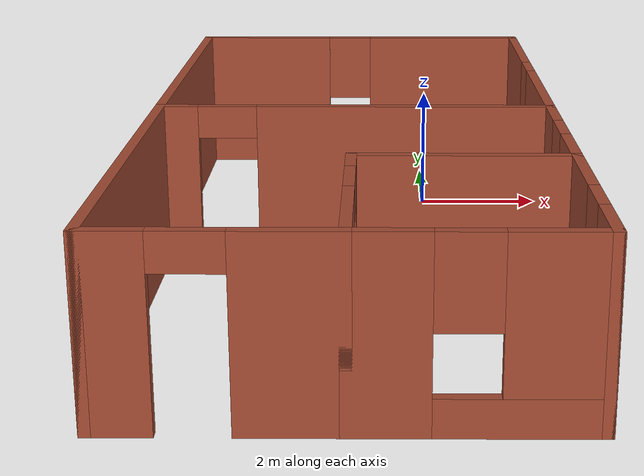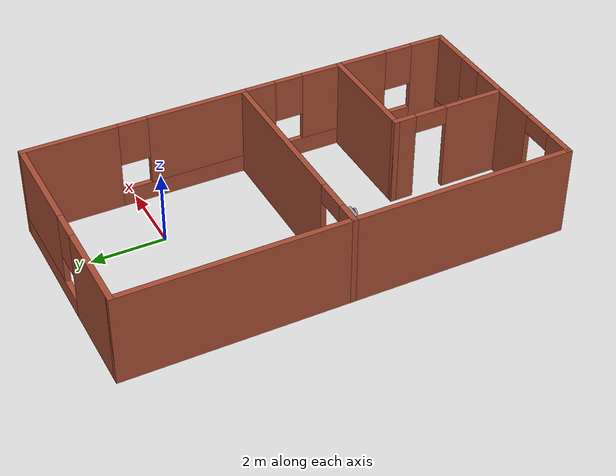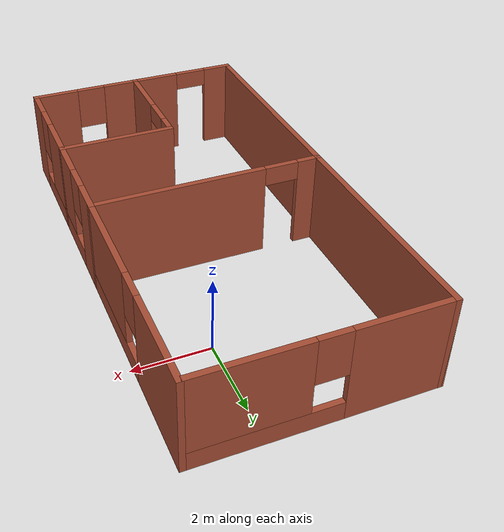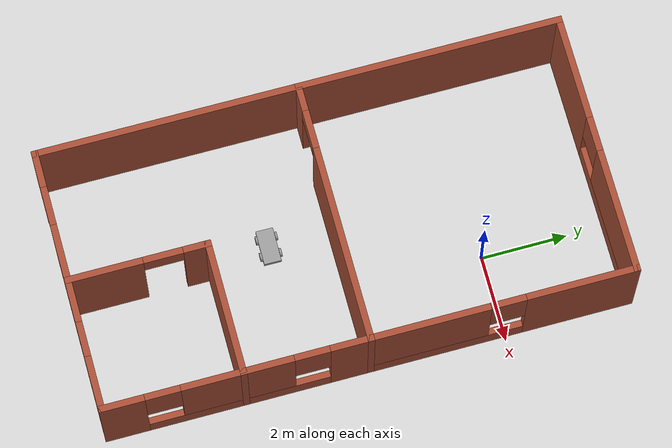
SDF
<sdf version="1.7">
 <world name="default">
  <model name="model">
   <pose>-1.16619 -3.11028 0 0 -0 0</pose>
   <link name="Wall_0">
    <pose>0 6 0 0 -0 0</pose>
    <visual name="Wall_0_Visual_0">
     <pose>-1.84053 0 1.25 0 -0 0</pose>
     <geometry><box><size>2.46894 0.15 2.5</size></box></geometry>
     <material>
      <script><uri>file://media/materials/scripts/gazebo.material</uri><name>Gazebo/Bricks</name></script>
      <ambient>1 1 1 1</ambient>
     </material>
     <meta><layer>0</layer></meta>
    </visual>
    <collision name="Wall_0_Collision_0">
     <geometry><box><size>2.46894 0.15 2.5</size></box></geometry>
     <pose>-1.84053 0 1.25 0 -0 0</pose>
    </collision>
    <visual name="Wall_0_Visual_1">
     <pose>1.23447 0 0.25 0 -0 0</pose>
     <geometry><box><size>3.68106 0.15 0.5</size></box></geometry>
     <material>
      <script><uri>file://media/materials/scripts/gazebo.material</uri><name>Gazebo/Bricks</name></script>
      <ambient>1 1 1 1</ambient>
     </material>
     <meta><layer>0</layer></meta>
    </visual>
    <collision name="Wall_0_Collision_1">
     <geometry><box><size>3.68106 0.15 0.5</size></box></geometry>
     <pose>1.23447 0 0.25 0 -0 0</pose>
    </collision>
    <visual name="Wall_0_Visual_2">
     <pose>1.63447 0 1.5 0 -0 0</pose>
     <geometry><box><size>2.88106 0.15 2</size></box></geometry>
     <material>
      <script><uri>file://media/materials/scripts/gazebo.material</uri><name>Gazebo/Bricks</name></script>
      <ambient>1 1 1 1</ambient>
     </material>
     <meta><layer>0</layer></meta>
    </visual>
    <collision name="Wall_0_Collision_2">
     <geometry><box><size>2.88106 0.15 2</size></box></geometry>
     <pose>1.63447 0 1.5 0 -0 0</pose>
    </collision>
    <visual name="Wall_0_Visual_3">
     <pose>-0.206057 0 1.9 0 -0 0</pose>
     <geometry><box><size>0.8 0.15 1.2</size></box></geometry>
     <material>
      <script><uri>file://media/materials/scripts/gazebo.material</uri><name>Gazebo/Bricks</name></script>
      <ambient>1 1 1 1</ambient>
     </material>
     <meta><layer>0</layer></meta>
    </visual>
    <collision name="Wall_0_Collision_3">
     <geometry><box><size>0.8 0.15 1.2</size></box></geometry>
     <pose>-0.206057 0 1.9 0 -0 0</pose>
    </collision>
   </link>
   <link name="Wall_1">
    <pose>3 3 0 0 -0 -1.5708</pose>
    <visual name="Wall_1_Visual_0">
     <pose>-1.78908 0 1.25 0 -0 0</pose>
     <geometry><box><size>2.57185 0.15 2.5</size></box></geometry>
     <material>
      <script><uri>file://media/materials/scripts/gazebo.material</uri><name>Gazebo/Bricks</name></script>
      <ambient>1 1 1 1</ambient>
     </material>
     <meta><layer>0</layer></meta>
    </visual>
    <collision name="Wall_1_Collision_0">
     <geometry><box><size>2.57185 0.15 2.5</size></box></geometry>
     <pose>-1.78908 0 1.25 0 -0 0</pose>
    </collision>
    <visual name="Wall_1_Visual_1">
     <pose>1.28592 0 0.25 0 -0 0</pose>
     <geometry><box><size>3.57815 0.15 0.5</size></box></geometry>
     <material>
      <script><uri>file://media/materials/scripts/gazebo.material</uri><name>Gazebo/Bricks</name></script>
      <ambient>1 1 1 1</ambient>
     </material>
     <meta><layer>0</layer></meta>
    </visual>
    <collision name="Wall_1_Collision_1">
     <geometry><box><size>3.57815 0.15 0.5</size></box></geometry>
     <pose>1.28592 0 0.25 0 -0 0</pose>
    </collision>
    <visual name="Wall_1_Visual_2">
     <pose>1.68592 0 1.5 0 -0 0</pose>
     <geometry><box><size>2.77815 0.15 2</size></box></geometry>
     <material>
      <script><uri>file://media/materials/scripts/gazebo.material</uri><name>Gazebo/Bricks</name></script>
      <ambient>1 1 1 1</ambient>
     </material>
     <meta><layer>0</layer></meta>
    </visual>
    <collision name="Wall_1_Collision_2">
     <geometry><box><size>2.77815 0.15 2</size></box></geometry>
     <pose>1.68592 0 1.5 0 -0 0</pose>
    </collision>
    <visual name="Wall_1_Visual_3">
     <pose>-0.103152 0 1.9 0 -0 0</pose>
     <geometry><box><size>0.8 0.15 1.2</size></box></geometry>
     <material>
      <script><uri>file://media/materials/scripts/gazebo.material</uri><name>Gazebo/Bricks</name></script>
      <ambient>1 1 1 1</ambient>
     </material>
     <meta><layer>0</layer></meta>
    </visual>
    <collision name="Wall_1_Collision_3">
     <geometry><box><size>0.8 0.15 1.2</size></box></geometry>
     <pose>-0.103152 0 1.9 0 -0 0</pose>
    </collision>
   </link>
   <link name="Wall_11">
    <collision name="Wall_11_Collision">
     <geometry><box><size>6.15 0.15 2.5</size></box></geometry>
     <pose>0 0 1.25 0 -0 0</pose>
    </collision>
    <visual name="Wall_11_Visual">
     <pose>0 0 1.25 0 -0 0</pose>
     <geometry><box><size>6.15 0.15 2.5</size></box></geometry>
     <material>
      <script><uri>file://media/materials/scripts/gazebo.material</uri><name>Gazebo/Bricks</name></script>
      <ambient>1 1 1 1</ambient>
     </material>
     <meta><layer>0</layer></meta>
    </visual>
    <pose>-3 -3 0 0 -0 -1.5708</pose>
   </link>
   <link name="Wall_12">
    <pose>-1.5 -6 0 0 -0 0</pose>
    <visual name="Wall_12_Visual_0">
     <pose>-1.1411 0 1.25 0 -0 0</pose>
     <geometry><box><size>0.867804 0.15 2.5</size></box></geometry>
     <material>
      <script><uri>file://media/materials/scripts/gazebo.material</uri><name>Gazebo/Bricks</name></script>
      <ambient>0.921569 0.807843 0.615686 1</ambient>
     </material>
     <meta><layer>0</layer></meta>
    </visual>
    <collision name="Wall_12_Collision_0">
     <geometry><box><size>0.867804 0.15 2.5</size></box></geometry>
     <pose>-1.1411 0 1.25 0 -0 0</pose>
    </collision>
    <visual name="Wall_12_Visual_1">
     <pose>0.883902 0 1.25 0 -0 0</pose>
     <geometry><box><size>1.3822 0.15 2.5</size></box></geometry>
     <material>
      <script><uri>file://media/materials/scripts/gazebo.material</uri><name>Gazebo/Bricks</name></script>
      <ambient>0.921569 0.807843 0.615686 1</ambient>
     </material>
     <meta><layer>0</layer></meta>
    </visual>
    <collision name="Wall_12_Collision_1">
     <geometry><box><size>1.3822 0.15 2.5</size></box></geometry>
     <pose>0.883902 0 1.25 0 -0 0</pose>
    </collision>
    <visual name="Wall_12_Visual_2">
     <pose>-0.257196 0 2.25 0 -0 0</pose>
     <geometry><box><size>0.9 0.15 0.5</size></box></geometry>
     <material>
      <script><uri>file://media/materials/scripts/gazebo.material</uri><name>Gazebo/Bricks</name></script>
      <ambient>0.921569 0.807843 0.615686 1</ambient>
     </material>
     <meta><layer>0</layer></meta>
    </visual>
    <collision name="Wall_12_Collision_2">
     <geometry><box><size>0.9 0.15 0.5</size></box></geometry>
     <pose>-0.257196 0 2.25 0 -0 0</pose>
    </collision>
   </link>
   <link name="Wall_2">
    <pose>0 0 0 0 -0 3.14159</pose>
    <visual name="Wall_2_Visual_0">
     <pose>-0.782142 0 1.25 0 -0 0</pose>
     <geometry><box><size>4.58624 0.15 2.5</size></box></geometry>
     <material>
      <script><uri>file://media/materials/scripts/gazebo.material</uri><name>Gazebo/Bricks</name></script>
      <ambient>0.921569 0.807843 0.615686 1</ambient>
     </material>
     <meta><layer>0</layer></meta>
    </visual>
    <collision name="Wall_2_Collision_0">
     <geometry><box><size>4.58624 0.15 2.5</size></box></geometry>
     <pose>-0.782142 0 1.25 0 -0 0</pose>
    </collision>
    <visual name="Wall_2_Visual_1">
     <pose>2.74312 0 1.25 0 -0 0</pose>
     <geometry><box><size>0.664284 0.15 2.5</size></box></geometry>
     <material>
      <script><uri>file://media/materials/scripts/gazebo.material</uri><name>Gazebo/Bricks</name></script>
      <ambient>0.921569 0.807843 0.615686 1</ambient>
     </material>
     <meta><layer>0</layer></meta>
    </visual>
    <collision name="Wall_2_Collision_1">
     <geometry><box><size>0.664284 0.15 2.5</size></box></geometry>
     <pose>2.74312 0 1.25 0 -0 0</pose>
    </collision>
    <visual name="Wall_2_Visual_2">
     <pose>1.96098 0 2.25 0 -0 0</pose>
     <geometry><box><size>0.9 0.15 0.5</size></box></geometry>
     <material>
      <script><uri>file://media/materials/scripts/gazebo.material</uri><name>Gazebo/Bricks</name></script>
      <ambient>0.921569 0.807843 0.615686 1</ambient>
     </material>
     <meta><layer>0</layer></meta>
    </visual>
    <collision name="Wall_2_Collision_2">
     <geometry><box><size>0.9 0.15 0.5</size></box></geometry>
     <pose>1.96098 0 2.25 0 -0 0</pose>
    </collision>
   </link>
   <link name="Wall_3">
    <collision name="Wall_3_Collision">
     <geometry><box><size>6.15 0.15 2.5</size></box></geometry>
     <pose>0 0 1.25 0 -0 0</pose>
    </collision>
    <visual name="Wall_3_Visual">
     <pose>0 0 1.25 0 -0 0</pose>
     <geometry><box><size>6.15 0.15 2.5</size></box></geometry>
     <material>
      <script><uri>file://media/materials/scripts/gazebo.material</uri><name>Gazebo/Bricks</name></script>
      <ambient>1 1 1 1</ambient>
     </material>
     <meta><layer>0</layer></meta>
    </visual>
    <pose>-3 3 0 0 -0 1.5708</pose>
   </link>
   <link name="Wall_5">
    <pose>3 -1.425 0 0 -0 -1.5708</pose>
    <visual name="Wall_5_Visual_0">
     <pose>-1.00707 0 1.25 0 -0 0</pose>
     <geometry><box><size>0.985864 0.15 2.5</size></box></geometry>
     <material>
      <script><uri>file://media/materials/scripts/gazebo.material</uri><name>Gazebo/Bricks</name></script>
      <ambient>1 1 1 1</ambient>
     </material>
     <meta><layer>0</layer></meta>
    </visual>
    <collision name="Wall_5_Collision_0">
     <geometry><box><size>0.985864 0.15 2.5</size></box></geometry>
     <pose>-1.00707 0 1.25 0 -0 0</pose>
    </collision>
    <visual name="Wall_5_Visual_1">
     <pose>0.492932 0 0.25 0 -0 0</pose>
     <geometry><box><size>2.01414 0.15 0.5</size></box></geometry>
     <material>
      <script><uri>file://media/materials/scripts/gazebo.material</uri><name>Gazebo/Bricks</name></script>
      <ambient>1 1 1 1</ambient>
     </material>
     <meta><layer>0</layer></meta>
    </visual>
    <collision name="Wall_5_Collision_1">
     <geometry><box><size>2.01414 0.15 0.5</size></box></geometry>
     <pose>0.492932 0 0.25 0 -0 0</pose>
    </collision>
    <visual name="Wall_5_Visual_2">
     <pose>0.892932 0 1.5 0 -0 0</pose>
     <geometry><box><size>1.21414 0.15 2</size></box></geometry>
     <material>
      <script><uri>file://media/materials/scripts/gazebo.material</uri><name>Gazebo/Bricks</name></script>
      <ambient>1 1 1 1</ambient>
     </material>
     <meta><layer>0</layer></meta>
    </visual>
    <collision name="Wall_5_Collision_2">
     <geometry><box><size>1.21414 0.15 2</size></box></geometry>
     <pose>0.892932 0 1.5 0 -0 0</pose>
    </collision>
    <visual name="Wall_5_Visual_3">
     <pose>-0.114136 0 1.9 0 -0 0</pose>
     <geometry><box><size>0.8 0.15 1.2</size></box></geometry>
     <material>
      <script><uri>file://media/materials/scripts/gazebo.material</uri><name>Gazebo/Bricks</name></script>
      <ambient>1 1 1 1</ambient>
     </material>
     <meta><layer>0</layer></meta>
    </visual>
    <collision name="Wall_5_Collision_3">
     <geometry><box><size>0.8 0.15 1.2</size></box></geometry>
     <pose>-0.114136 0 1.9 0 -0 0</pose>
    </collision>
   </link>
   <link name="Wall_6">
    <collision name="Wall_6_Collision">
     <geometry><box><size>3.15 0.15 2.5</size></box></geometry>
     <pose>0 0 1.25 0 -0 0</pose>
    </collision>
    <visual name="Wall_6_Visual">
     <pose>0 0 1.25 0 -0 0</pose>
     <geometry><box><size>3.15 0.15 2.5</size></box></geometry>
     <material>
      <script><uri>file://media/materials/scripts/gazebo.material</uri><name>Gazebo/Bricks</name></script>
      <ambient>0.921569 0.807843 0.615686 1</ambient>
     </material>
     <meta><layer>0</layer></meta>
    </visual>
    <pose>1.5 -2.85 0 0 -0 3.14159</pose>
   </link>
   <link name="Wall_7">
    <pose>0 -4.425 0 0 -0 -1.5708</pose>
    <visual name="Wall_7_Visual_0">
     <pose>-1.32986 0 1.25 0 -0 0</pose>
     <geometry><box><size>0.640288 0.15 2.5</size></box></geometry>
     <material>
      <script><uri>file://media/materials/scripts/gazebo.material</uri><name>Gazebo/Bricks</name></script>
      <ambient>0.921569 0.807843 0.615686 1</ambient>
     </material>
     <meta><layer>0</layer></meta>
    </visual>
    <collision name="Wall_7_Collision_0">
     <geometry><box><size>0.640288 0.15 2.5</size></box></geometry>
     <pose>-1.32986 0 1.25 0 -0 0</pose>
    </collision>
    <visual name="Wall_7_Visual_1">
     <pose>0.770144 0 1.25 0 -0 0</pose>
     <geometry><box><size>1.75971 0.15 2.5</size></box></geometry>
     <material>
      <script><uri>file://media/materials/scripts/gazebo.material</uri><name>Gazebo/Bricks</name></script>
      <ambient>0.921569 0.807843 0.615686 1</ambient>
     </material>
     <meta><layer>0</layer></meta>
    </visual>
    <collision name="Wall_7_Collision_1">
     <geometry><box><size>1.75971 0.15 2.5</size></box></geometry>
     <pose>0.770144 0 1.25 0 -0 0</pose>
    </collision>
    <visual name="Wall_7_Visual_2">
     <pose>-0.559712 0 2.25 0 -0 0</pose>
     <geometry><box><size>0.9 0.15 0.5</size></box></geometry>
     <material>
      <script><uri>file://media/materials/scripts/gazebo.material</uri><name>Gazebo/Bricks</name></script>
      <ambient>0.921569 0.807843 0.615686 1</ambient>
     </material>
     <meta><layer>0</layer></meta>
    </visual>
    <collision name="Wall_7_Collision_2">
     <geometry><box><size>0.9 0.15 0.5</size></box></geometry>
     <pose>-0.559712 0 2.25 0 -0 0</pose>
    </collision>
   </link>
   <link name="Wall_8">
    <pose>1.5 -6 0 0 -0 0</pose>
    <visual name="Wall_8_Visual_0">
     <pose>-1.04724 0 1.25 0 -0 0</pose>
     <geometry><box><size>1.05552 0.15 2.5</size></box></geometry>
     <material>
      <script><uri>file://media/materials/scripts/gazebo.material</uri><name>Gazebo/Bricks</name></script>
      <ambient>0.921569 0.807843 0.615686 1</ambient>
     </material>
     <meta><layer>0</layer></meta>
    </visual>
    <collision name="Wall_8_Collision_0">
     <geometry><box><size>1.05552 0.15 2.5</size></box></geometry>
     <pose>-1.04724 0 1.25 0 -0 0</pose>
    </collision>
    <visual name="Wall_8_Visual_1">
     <pose>0.527761 0 0.25 0 -0 0</pose>
     <geometry><box><size>2.09448 0.15 0.5</size></box></geometry>
     <material>
      <script><uri>file://media/materials/scripts/gazebo.material</uri><name>Gazebo/Bricks</name></script>
      <ambient>0.921569 0.807843 0.615686 1</ambient>
     </material>
     <meta><layer>0</layer></meta>
    </visual>
    <collision name="Wall_8_Collision_1">
     <geometry><box><size>2.09448 0.15 0.5</size></box></geometry>
     <pose>0.527761 0 0.25 0 -0 0</pose>
    </collision>
    <visual name="Wall_8_Visual_2">
     <pose>0.927761 0 1.5 0 -0 0</pose>
     <geometry><box><size>1.29448 0.15 2</size></box></geometry>
     <material>
      <script><uri>file://media/materials/scripts/gazebo.material</uri><name>Gazebo/Bricks</name></script>
      <ambient>0.921569 0.807843 0.615686 1</ambient>
     </material>
     <meta><layer>0</layer></meta>
    </visual>
    <collision name="Wall_8_Collision_2">
     <geometry><box><size>1.29448 0.15 2</size></box></geometry>
     <pose>0.927761 0 1.5 0 -0 0</pose>
    </collision>
    <visual name="Wall_8_Visual_3">
     <pose>-0.119479 0 1.9 0 -0 0</pose>
     <geometry><box><size>0.8 0.15 1.2</size></box></geometry>
     <material>
      <script><uri>file://media/materials/scripts/gazebo.material</uri><name>Gazebo/Bricks</name></script>
      <ambient>0.921569 0.807843 0.615686 1</ambient>
     </material>
     <meta><layer>0</layer></meta>
    </visual>
    <collision name="Wall_8_Collision_3">
     <geometry><box><size>0.8 0.15 1.2</size></box></geometry>
     <pose>-0.119479 0 1.9 0 -0 0</pose>
    </collision>
   </link>
   <link name="Wall_9">
    <pose>3 -4.425 0 0 -0 1.5708</pose>
    <visual name="Wall_9_Visual_0">
     <pose>-1.13736 0 1.25 0 -0 0</pose>
     <geometry><box><size>1.02528 0.15 2.5</size></box></geometry>
     <material>
      <script><uri>file://media/materials/scripts/gazebo.material</uri><name>Gazebo/Bricks</name></script>
      <ambient>0.921569 0.807843 0.615686 1</ambient>
     </material>
     <meta><layer>0</layer></meta>
    </visual>
    <collision name="Wall_9_Collision_0">
     <geometry><box><size>1.02528 0.15 2.5</size></box></geometry>
     <pose>-1.13736 0 1.25 0 -0 0</pose>
    </collision>
    <visual name="Wall_9_Visual_1">
     <pose>0.512642 0 0.25 0 -0 0</pose>
     <geometry><box><size>2.27472 0.15 0.5</size></box></geometry>
     <material>
      <script><uri>file://media/materials/scripts/gazebo.material</uri><name>Gazebo/Bricks</name></script>
      <ambient>0.921569 0.807843 0.615686 1</ambient>
     </material>
     <meta><layer>0</layer></meta>
    </visual>
    <collision name="Wall_9_Collision_1">
     <geometry><box><size>2.27472 0.15 0.5</size></box></geometry>
     <pose>0.512642 0 0.25 0 -0 0</pose>
    </collision>
    <visual name="Wall_9_Visual_2">
     <pose>0.912642 0 1.5 0 -0 0</pose>
     <geometry><box><size>1.47472 0.15 2</size></box></geometry>
     <material>
      <script><uri>file://media/materials/scripts/gazebo.material</uri><name>Gazebo/Bricks</name></script>
      <ambient>0.921569 0.807843 0.615686 1</ambient>
     </material>
     <meta><layer>0</layer></meta>
    </visual>
    <collision name="Wall_9_Collision_2">
     <geometry><box><size>1.47472 0.15 2</size></box></geometry>
     <pose>0.912642 0 1.5 0 -0 0</pose>
    </collision>
    <visual name="Wall_9_Visual_3">
     <pose>-0.224717 0 1.9 0 -0 0</pose>
     <geometry><box><size>0.8 0.15 1.2</size></box></geometry>
     <material>
      <script><uri>file://media/materials/scripts/gazebo.material</uri><name>Gazebo/Bricks</name></script>
      <ambient>0.921569 0.807843 0.615686 1</ambient>
     </material>
     <meta><layer>0</layer></meta>
    </visual>
    <collision name="Wall_9_Collision_3">
     <geometry><box><size>0.8 0.15 1.2</size></box></geometry>
     <pose>-0.224717 0 1.9 0 -0 0</pose>
    </collision>
   </link>
   <static>1</static>
  </model>
  <model name="four-wheels-robot_clone">
   <link name="link_0">
    <inertial>
     <mass>1</mass>
     <inertia>
      <ixx>0.166667</ixx>
      <ixy>0</ixy>
      <ixz>0</ixz>
      <iyy>0.166667</iyy>
      <iyz>0</iyz>
      <izz>0.166667</izz>
     </inertia>
    </inertial>
    <pose>-0.117983 0.041462 -0.32 0 -0 0</pose>
    <visual name="visual">
     <geometry><box><size>0.8 0.4 0.1</size></box></geometry>
     <material>
      <lighting>1</lighting>
      <script><uri>file://media/materials/scripts/gazebo.material</uri><name>Gazebo/Grey</name></script>
      <shader type="pixel"><normal_map>__default__</normal_map></shader>
      <ambient>0.3 0.3 0.3 1</ambient>
      <diffuse>0.7 0.7 0.7 1</diffuse>
      <specular>0.01 0.01 0.01 1</specular>
      <emissive>0 0 0 1</emissive>
     </material>
    </visual>
    <collision name="collision">
     <geometry><box><size>0.8 0.4 0.1</size></box></geometry>
     <surface>
      <friction>
       <ode><mu>1</mu><mu2>1</mu2><fdir1>0 0 0</fdir1><slip1>0</slip1><slip2>0</slip2></ode>
       <torsional>
        <coefficient>1</coefficient>
        <patch_radius>0</patch_radius>
        <surface_radius>0</surface_radius>
        <use_patch_radius>1</use_patch_radius>
        <ode><slip>0</slip></ode>
       </torsional>
      </friction>
      <bounce><restitution_coefficient>0</restitution_coefficient><threshold>1e+06</threshold></bounce>
      <contact>
       <collide_without_contact>0</collide_without_contact>
       <collide_without_contact_bitmask>1</collide_without_contact_bitmask>
       <collide_bitmask>1</collide_bitmask>
       <ode>
        <soft_cfm>0</soft_cfm>
        <soft_erp>0.2</soft_erp>
        <kp>1e+13</kp>
        <kd>1</kd>
        <max_vel>0.01</max_vel>
        <min_depth>0</min_depth>
       </ode>
       <bullet>
        <split_impulse>1</split_impulse>
        <split_impulse_penetration_threshold>-0.01</split_impulse_penetration_threshold>
        <soft_cfm>0</soft_cfm>
        <soft_erp>0.2</soft_erp>
        <kp>1e+13</kp>
        <kd>1</kd>
       </bullet>
      </contact>
     </surface>
    </collision>
   </link>
   <link name="link_1">
    <inertial>
     <mass>1</mass>
     <inertia><ixx>0.145833</ixx><ixy>0</ixy><ixz>0</ixz><iyy>0.145833</iyy><iyz>0</iyz><izz>0.125</izz></inertia>
    </inertial>
    <pose>-0.317983 -0.183538 -0.32 1.5708 -0 0</pose>
    <visual name="visual">
     <geometry><cylinder><radius>0.1</radius><length>0.05</length></cylinder></geometry>
     <material>
      <lighting>1</lighting>
      <script><uri>file://media/materials/scripts/gazebo.material</uri><name>Gazebo/Grey</name></script>
      <shader type="pixel"><normal_map>__default__</normal_map></shader>
      <ambient>0.3 0.3 0.3 1</ambient>
      <diffuse>0.7 0.7 0.7 1</diffuse>
      <specular>0.01 0.01 0.01 1</specular>
      <emissive>0 0 0 1</emissive>
     </material>
    </visual>
    <collision name="collision">
     <geometry><cylinder><radius>0.1</radius><length>0.05</length></cylinder></geometry>
     <surface>
      <friction>
       <ode><mu>1</mu><mu2>1</mu2><fdir1>0 0 0</fdir1><slip1>0</slip1><slip2>0</slip2></ode>
       <torsional>
        <coefficient>1</coefficient>
        <patch_radius>0</patch_radius>
        <surface_radius>0</surface_radius>
        <use_patch_radius>1</use_patch_radius>
        <ode><slip>0</slip></ode>
       </torsional>
      </friction>
      <bounce><restitution_coefficient>0</restitution_coefficient><threshold>1e+06</threshold></bounce>
      <contact>
       <collide_without_contact>0</collide_without_contact>
       <collide_without_contact_bitmask>1</collide_without_contact_bitmask>
       <collide_bitmask>1</collide_bitmask>
       <ode>
        <soft_cfm>0</soft_cfm>
        <soft_erp>0.2</soft_erp>
        <kp>1e+13</kp>
        <kd>1</kd>
        <max_vel>0.01</max_vel>
        <min_depth>0</min_depth>
       </ode>
       <bullet>
        <split_impulse>1</split_impulse>
        <split_impulse_penetration_threshold>-0.01</split_impulse_penetration_threshold>
        <soft_cfm>0</soft_cfm>
        <soft_erp>0.2</soft_erp>
        <kp>1e+13</kp>
        <kd>1</kd>
       </bullet>
      </contact>
     </surface>
    </collision>
   </link>
   <link name="link_1_clone">
    <inertial>
     <mass>1</mass>
     <inertia><ixx>0.145833</ixx><ixy>0</ixy><ixz>0</ixz><iyy>0.145833</iyy><iyz>0</iyz><izz>0.125</izz></inertia>
    </inertial>
    <pose>0.082017 -0.183538 -0.32 1.5708 -0 0</pose>
    <visual name="visual">
     <geometry><cylinder><radius>0.1</radius><length>0.05</length></cylinder></geometry>
     <material>
      <lighting>1</lighting>
      <script><uri>file://media/materials/scripts/gazebo.material</uri><name>Gazebo/Grey</name></script>
      <shader type="pixel"><normal_map>__default__</normal_map></shader>
      <ambient>0.3 0.3 0.3 1</ambient>
      <diffuse>0.7 0.7 0.7 1</diffuse>
      <specular>0.01 0.01 0.01 1</specular>
      <emissive>0 0 0 1</emissive>
     </material>
    </visual>
    <collision name="collision">
     <geometry><cylinder><radius>0.1</radius><length>0.05</length></cylinder></geometry>
     <surface>
      <friction>
       <ode><mu>1</mu><mu2>1</mu2><fdir1>0 0 0</fdir1><slip1>0</slip1><slip2>0</slip2></ode>
       <torsional>
        <coefficient>1</coefficient>
        <patch_radius>0</patch_radius>
        <surface_radius>0</surface_radius>
        <use_patch_radius>1</use_patch_radius>
        <ode><slip>0</slip></ode>
       </torsional>
      </friction>
      <bounce><restitution_coefficient>0</restitution_coefficient><threshold>1e+06</threshold></bounce>
      <contact>
       <collide_without_contact>0</collide_without_contact>
       <collide_without_contact_bitmask>1</collide_without_contact_bitmask>
       <collide_bitmask>1</collide_bitmask>
       <ode>
        <soft_cfm>0</soft_cfm>
        <soft_erp>0.2</soft_erp>
        <kp>1e+13</kp>
        <kd>1</kd>
        <max_vel>0.01</max_vel>
        <min_depth>0</min_depth>
       </ode>
       <bullet>
        <split_impulse>1</split_impulse>
        <split_impulse_penetration_threshold>-0.01</split_impulse_penetration_threshold>
        <soft_cfm>0</soft_cfm>
        <soft_erp>0.2</soft_erp>
        <kp>1e+13</kp>
        <kd>1</kd>
       </bullet>
      </contact>
     </surface>
    </collision>
   </link>
   <link name="link_1_clone_0">
    <inertial>
     <mass>1</mass>
     <inertia><ixx>0.145833</ixx><ixy>0</ixy><ixz>0</ixz><iyy>0.145833</iyy><iyz>0</iyz><izz>0.125</izz></inertia>
    </inertial>
    <pose>0.082017 0.266462 -0.32 1.5708 -0 0</pose>
    <visual name="visual">
     <geometry><cylinder><radius>0.1</radius><length>0.05</length></cylinder></geometry>
     <material>
      <lighting>1</lighting>
      <script><uri>file://media/materials/scripts/gazebo.material</uri><name>Gazebo/Grey</name></script>
      <shader type="pixel"><normal_map>__default__</normal_map></shader>
      <ambient>0.3 0.3 0.3 1</ambient>
      <diffuse>0.7 0.7 0.7 1</diffuse>
      <specular>0.01 0.01 0.01 1</specular>
      <emissive>0 0 0 1</emissive>
     </material>
    </visual>
    <collision name="collision">
     <geometry><cylinder><radius>0.1</radius><length>0.05</length></cylinder></geometry>
     <surface>
      <friction>
       <ode><mu>1</mu><mu2>1</mu2><fdir1>0 0 0</fdir1><slip1>0</slip1><slip2>0</slip2></ode>
       <torsional>
        <coefficient>1</coefficient>
        <patch_radius>0</patch_radius>
        <surface_radius>0</surface_radius>
        <use_patch_radius>1</use_patch_radius>
        <ode><slip>0</slip></ode>
       </torsional>
      </friction>
      <bounce><restitution_coefficient>0</restitution_coefficient><threshold>1e+06</threshold></bounce>
      <contact>
       <collide_without_contact>0</collide_without_contact>
       <collide_without_contact_bitmask>1</collide_without_contact_bitmask>
       <collide_bitmask>1</collide_bitmask>
       <ode>
        <soft_cfm>0</soft_cfm>
        <soft_erp>0.2</soft_erp>
        <kp>1e+13</kp>
        <kd>1</kd>
        <max_vel>0.01</max_vel>
        <min_depth>0</min_depth>
       </ode>
       <bullet>
        <split_impulse>1</split_impulse>
        <split_impulse_penetration_threshold>-0.01</split_impulse_penetration_threshold>
        <soft_cfm>0</soft_cfm>
        <soft_erp>0.2</soft_erp>
        <kp>1e+13</kp>
        <kd>1</kd>
       </bullet>
      </contact>
     </surface>
    </collision>
   </link>
   <link name="link_1_clone_1">
    <inertial>
     <mass>1</mass>
     <inertia><ixx>0.145833</ixx><ixy>0</ixy><ixz>0</ixz><iyy>0.145833</iyy><iyz>0</iyz><izz>0.125</izz></inertia>
    </inertial>
    <pose>-0.317983 0.266462 -0.32 1.5708 -0 0</pose>
    <visual name="visual">
     <geometry><cylinder><radius>0.1</radius><length>0.05</length></cylinder></geometry>
     <material>
      <lighting>1</lighting>
      <script><uri>file://media/materials/scripts/gazebo.material</uri><name>Gazebo/Grey</name></script>
      <shader type="pixel"><normal_map>__default__</normal_map></shader>
      <ambient>0.3 0.3 0.3 1</ambient>
      <diffuse>0.7 0.7 0.7 1</diffuse>
      <specular>0.01 0.01 0.01 1</specular>
      <emissive>0 0 0 1</emissive>
     </material>
    </visual>
    <collision name="collision">
     <geometry><cylinder><radius>0.1</radius><length>0.05</length></cylinder></geometry>
     <surface>
      <friction>
       <ode><mu>1</mu><mu2>1</mu2><fdir1>0 0 0</fdir1><slip1>0</slip1><slip2>0</slip2></ode>
       <torsional>
        <coefficient>1</coefficient>
        <patch_radius>0</patch_radius>
        <surface_radius>0</surface_radius>
        <use_patch_radius>1</use_patch_radius>
        <ode><slip>0</slip></ode>
       </torsional>
      </friction>
      <bounce><restitution_coefficient>0</restitution_coefficient><threshold>1e+06</threshold></bounce>
      <contact>
       <collide_without_contact>0</collide_without_contact>
       <collide_without_contact_bitmask>1</collide_without_contact_bitmask>
       <collide_bitmask>1</collide_bitmask>
       <ode>
        <soft_cfm>0</soft_cfm>
        <soft_erp>0.2</soft_erp>
        <kp>1e+13</kp>
        <kd>1</kd>
        <max_vel>0.01</max_vel>
        <min_depth>0</min_depth>
       </ode>
       <bullet>
        <split_impulse>1</split_impulse>
        <split_impulse_penetration_threshold>-0.01</split_impulse_penetration_threshold>
        <soft_cfm>0</soft_cfm>
        <soft_erp>0.2</soft_erp>
        <kp>1e+13</kp>
        <kd>1</kd>
       </bullet>
      </contact>
     </surface>
    </collision>
   </link>
   <joint name="link_0_JOINT_1" type="revolute">
    <parent>link_0</parent>
    <child>link_1</child>
    <axis>
     <xyz>1 0 0</xyz>
     <limit>
      <lower>-1.79769e+308</lower>
      <upper>1.79769e+308</upper>
      <effort>-1</effort>
      <velocity>-1</velocity>
     </limit>
     <dynamics>
      <spring_reference>0</spring_reference>
      <spring_stiffness>0</spring_stiffness>
      <damping>0</damping>
     </dynamics>
    </axis>
    <physics>
     <ode><limit><cfm>0</cfm><erp>0.2</erp></limit><suspension><cfm>0</cfm><erp>0.2</erp></suspension></ode>
    </physics>
   </joint>
   <joint name="link_0_JOINT_2" type="revolute">
    <parent>link_0</parent>
    <child>link_1_clone</child>
    <axis>
     <xyz>1 0 0</xyz>
     <limit>
      <lower>-1.79769e+308</lower>
      <upper>1.79769e+308</upper>
      <effort>-1</effort>
      <velocity>-1</velocity>
     </limit>
     <dynamics>
      <spring_reference>0</spring_reference>
      <spring_stiffness>0</spring_stiffness>
      <damping>0</damping>
     </dynamics>
    </axis>
    <physics>
     <ode><limit><cfm>0</cfm><erp>0.2</erp></limit><suspension><cfm>0</cfm><erp>0.2</erp></suspension></ode>
    </physics>
   </joint>
   <joint name="link_0_JOINT_3" type="revolute">
    <parent>link_0</parent>
    <child>link_1_clone_0</child>
    <axis>
     <xyz>1 0 0</xyz>
     <limit>
      <lower>-1.79769e+308</lower>
      <upper>1.79769e+308</upper>
      <effort>-1</effort>
      <velocity>-1</velocity>
     </limit>
     <dynamics>
      <spring_reference>0</spring_reference>
      <spring_stiffness>0</spring_stiffness>
      <damping>0</damping>
     </dynamics>
    </axis>
    <physics>
     <ode><limit><cfm>0</cfm><erp>0.2</erp></limit><suspension><cfm>0</cfm><erp>0.2</erp></suspension></ode>
    </physics>
   </joint>
   <joint name="link_0_JOINT_4" type="revolute">
    <parent>link_0</parent>
    <child>link_1_clone_1</child>
    <axis>
     <xyz>1 0 0</xyz>
     <limit>
      <lower>-1.79769e+308</lower>
      <upper>1.79769e+308</upper>
      <effort>-1</effort>
      <velocity>-1</velocity>
     </limit>
     <dynamics>
      <spring_reference>0</spring_reference>
      <spring_stiffness>0</spring_stiffness>
      <damping>0</damping>
     </dynamics>
    </axis>
    <physics>
     <ode><limit><cfm>0</cfm><erp>0.2</erp></limit><suspension><cfm>0</cfm><erp>0.2</erp></suspension></ode>
    </physics>
   </joint>
   <static>0</static>
   <pose>-1.37618 -4.59611 0.419994 7e-06 -0 -0.009601</pose>
  </model>
 </world>
</sdf>
